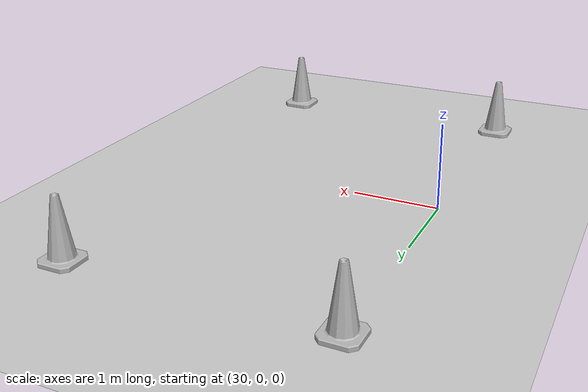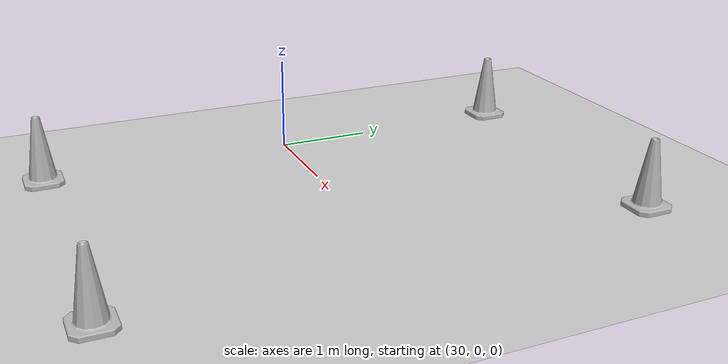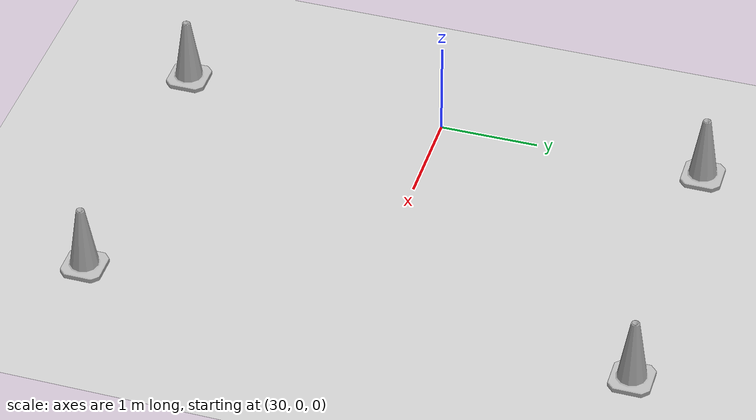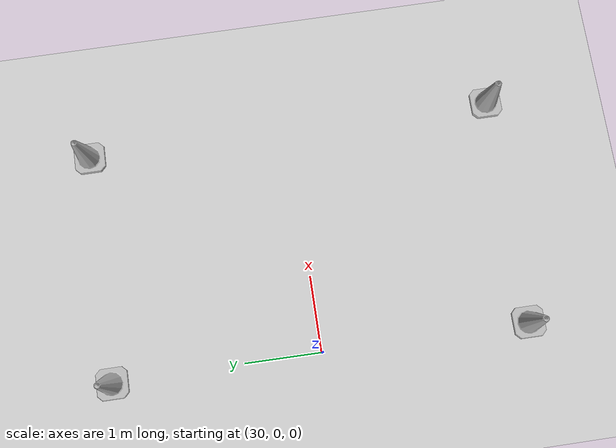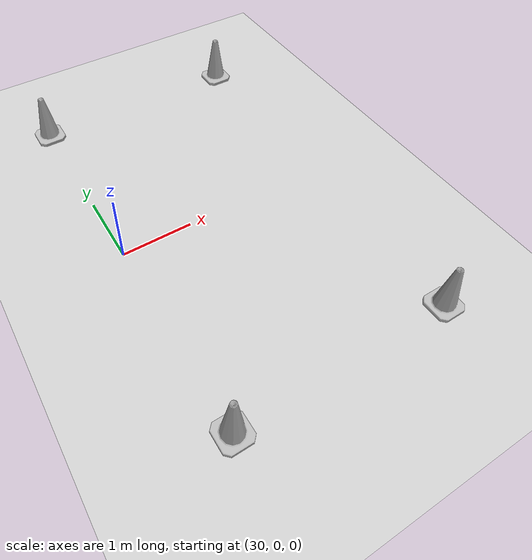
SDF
<sdf version="1.7">
 <world name="default">
  <model name="ground_plane">
   <static>1</static>
   <link name="link">
    <collision name="collision">
     <geometry><plane><normal>0 0 1</normal><size>100 100</size></plane></geometry>
     <surface>
      <contact><collide_bitmask>65535</collide_bitmask></contact>
      <friction><ode><mu>100</mu><mu2>50</mu2></ode></friction>
     </surface>
    </collision>
    <visual name="visual">
     <cast_shadows>0</cast_shadows>
     <geometry><plane><normal>0 0 1</normal><size>100 100</size></plane></geometry>
     <material>
      <script><uri>file://media/materials/scripts/gazebo.material</uri><name>Gazebo/Grey</name></script>
     </material>
    </visual>
   </link>
  </model>
  <model name="Construction_Cone_b_12">
   <link name="link">
    <inertial>
     <inertia><ixx>1</ixx><ixy>0</ixy><ixz>0</ixz><iyy>1</iyy><iyz>0</iyz><izz>1</izz></inertia>
     <mass>1</mass>
    </inertial>
    <visual name="visual">
     <geometry>
      <mesh><scale>8 8 6.7</scale><uri>./construction_cone/meshes/construction_cone_b.dae</uri></mesh>
     </geometry>
     <material><shader type="pixel"/></material>
    </visual>
    <collision name="collision">
     <geometry>
      <mesh><uri>./construction_cone/meshes/construction_cone_b.dae</uri><scale>8 8 6.7</scale></mesh>
     </geometry>
     <surface>
      <friction>
       <ode><mu>1</mu><mu2>1</mu2><fdir1>0 0 0</fdir1><slip1>0</slip1><slip2>0</slip2></ode>
       <torsional>
        <coefficient>1</coefficient>
        <patch_radius>0</patch_radius>
        <surface_radius>0</surface_radius>
        <use_patch_radius>1</use_patch_radius>
        <ode><slip>0</slip></ode>
       </torsional>
      </friction>
      <bounce><restitution_coefficient>0</restitution_coefficient><threshold>1e+06</threshold></bounce>
      <contact>
       <collide_without_contact>0</collide_without_contact>
       <collide_without_contact_bitmask>1</collide_without_contact_bitmask>
       <collide_bitmask>1</collide_bitmask>
       <ode>
        <soft_cfm>0</soft_cfm>
        <soft_erp>0.2</soft_erp>
        <kp>1e+13</kp>
        <kd>1</kd>
        <max_vel>0.01</max_vel>
        <min_depth>0</min_depth>
       </ode>
       <bullet>
        <split_impulse>1</split_impulse>
        <split_impulse_penetration_threshold>-0.01</split_impulse_penetration_threshold>
        <soft_cfm>0</soft_cfm>
        <soft_erp>0.2</soft_erp>
        <kp>1e+13</kp>
        <kd>1</kd>
       </bullet>
      </contact>
     </surface>
    </collision>
   </link>
   <static>0</static>
   <pose>30.0008 -2.70114 -0 0 -0 0</pose>
  </model>
  <model name="Construction_Cone_b_14">
   <link name="link">
    <inertial>
     <inertia><ixx>1</ixx><ixy>0</ixy><ixz>0</ixz><iyy>1</iyy><iyz>0</iyz><izz>1</izz></inertia>
     <mass>1</mass>
    </inertial>
    <visual name="visual">
     <geometry>
      <mesh><scale>8 8 6.7</scale><uri>./construction_cone/meshes/construction_cone_b.dae</uri></mesh>
     </geometry>
     <material><shader type="pixel"/></material>
    </visual>
    <collision name="collision">
     <geometry>
      <mesh><uri>./construction_cone/meshes/construction_cone_b.dae</uri><scale>8 8 6.7</scale></mesh>
     </geometry>
     <surface>
      <friction>
       <ode><mu>1</mu><mu2>1</mu2><fdir1>0 0 0</fdir1><slip1>0</slip1><slip2>0</slip2></ode>
       <torsional>
        <coefficient>1</coefficient>
        <patch_radius>0</patch_radius>
        <surface_radius>0</surface_radius>
        <use_patch_radius>1</use_patch_radius>
        <ode><slip>0</slip></ode>
       </torsional>
      </friction>
      <bounce><restitution_coefficient>0</restitution_coefficient><threshold>1e+06</threshold></bounce>
      <contact>
       <collide_without_contact>0</collide_without_contact>
       <collide_without_contact_bitmask>1</collide_without_contact_bitmask>
       <collide_bitmask>1</collide_bitmask>
       <ode>
        <soft_cfm>0</soft_cfm>
        <soft_erp>0.2</soft_erp>
        <kp>1e+13</kp>
        <kd>1</kd>
        <max_vel>0.01</max_vel>
        <min_depth>0</min_depth>
       </ode>
       <bullet>
        <split_impulse>1</split_impulse>
        <split_impulse_penetration_threshold>-0.01</split_impulse_penetration_threshold>
        <soft_cfm>0</soft_cfm>
        <soft_erp>0.2</soft_erp>
        <kp>1e+13</kp>
        <kd>1</kd>
       </bullet>
      </contact>
     </surface>
    </collision>
   </link>
   <static>0</static>
   <pose>32.9984 -2.70167 -0 0 -0 0</pose>
  </model>
  <model name="Construction_Cone_y_9">
   <link name="link">
    <inertial>
     <inertia><ixx>1</ixx><ixy>0</ixy><ixz>0</ixz><iyy>1</iyy><iyz>0</iyz><izz>1</izz></inertia>
     <mass>1</mass>
    </inertial>
    <visual name="visual">
     <geometry>
      <mesh><scale>8 8 6.7</scale><uri>./construction_cone/meshes/construction_cone_y.dae</uri></mesh>
     </geometry>
     <material><shader type="pixel"/></material>
    </visual>
    <collision name="collision">
     <geometry>
      <mesh><uri>./construction_cone/meshes/construction_cone_y.dae</uri><scale>8 8 6.7</scale></mesh>
     </geometry>
     <surface>
      <friction>
       <ode><mu>1</mu><mu2>1</mu2><fdir1>0 0 0</fdir1><slip1>0</slip1><slip2>0</slip2></ode>
       <torsional>
        <coefficient>1</coefficient>
        <patch_radius>0</patch_radius>
        <surface_radius>0</surface_radius>
        <use_patch_radius>1</use_patch_radius>
        <ode><slip>0</slip></ode>
       </torsional>
      </friction>
      <bounce><restitution_coefficient>0</restitution_coefficient><threshold>1e+06</threshold></bounce>
      <contact>
       <collide_without_contact>0</collide_without_contact>
       <collide_without_contact_bitmask>1</collide_without_contact_bitmask>
       <collide_bitmask>1</collide_bitmask>
       <ode>
        <soft_cfm>0</soft_cfm>
        <soft_erp>0.2</soft_erp>
        <kp>1e+13</kp>
        <kd>1</kd>
        <max_vel>0.01</max_vel>
        <min_depth>0</min_depth>
       </ode>
       <bullet>
        <split_impulse>1</split_impulse>
        <split_impulse_penetration_threshold>-0.01</split_impulse_penetration_threshold>
        <soft_cfm>0</soft_cfm>
        <soft_erp>0.2</soft_erp>
        <kp>1e+13</kp>
        <kd>1</kd>
       </bullet>
      </contact>
     </surface>
    </collision>
   </link>
   <static>0</static>
   <pose>29.9994 2.70008 -0 0 -0 0</pose>
  </model>
  <model name="Construction_Cone_y_10">
   <link name="link">
    <inertial>
     <inertia><ixx>1</ixx><ixy>0</ixy><ixz>0</ixz><iyy>1</iyy><iyz>0</iyz><izz>1</izz></inertia>
     <mass>1</mass>
    </inertial>
    <visual name="visual">
     <geometry>
      <mesh><scale>8 8 6.7</scale><uri>./construction_cone/meshes/construction_cone_y.dae</uri></mesh>
     </geometry>
     <material><shader type="pixel"/></material>
    </visual>
    <collision name="collision">
     <geometry>
      <mesh><uri>./construction_cone/meshes/construction_cone_y.dae</uri><scale>8 8 6.7</scale></mesh>
     </geometry>
     <surface>
      <friction>
       <ode><mu>1</mu><mu2>1</mu2><fdir1>0 0 0</fdir1><slip1>0</slip1><slip2>0</slip2></ode>
       <torsional>
        <coefficient>1</coefficient>
        <patch_radius>0</patch_radius>
        <surface_radius>0</surface_radius>
        <use_patch_radius>1</use_patch_radius>
        <ode><slip>0</slip></ode>
       </torsional>
      </friction>
      <bounce><restitution_coefficient>0</restitution_coefficient><threshold>1e+06</threshold></bounce>
      <contact>
       <collide_without_contact>0</collide_without_contact>
       <collide_without_contact_bitmask>1</collide_without_contact_bitmask>
       <collide_bitmask>1</collide_bitmask>
       <ode>
        <soft_cfm>0</soft_cfm>
        <soft_erp>0.2</soft_erp>
        <kp>1e+13</kp>
        <kd>1</kd>
        <max_vel>0.01</max_vel>
        <min_depth>0</min_depth>
       </ode>
       <bullet>
        <split_impulse>1</split_impulse>
        <split_impulse_penetration_threshold>-0.01</split_impulse_penetration_threshold>
        <soft_cfm>0</soft_cfm>
        <soft_erp>0.2</soft_erp>
        <kp>1e+13</kp>
        <kd>1</kd>
       </bullet>
      </contact>
     </surface>
    </collision>
   </link>
   <static>0</static>
   <pose>32.9983 2.70114 -0 0 -0 0</pose>
  </model>
 </world>
</sdf>
